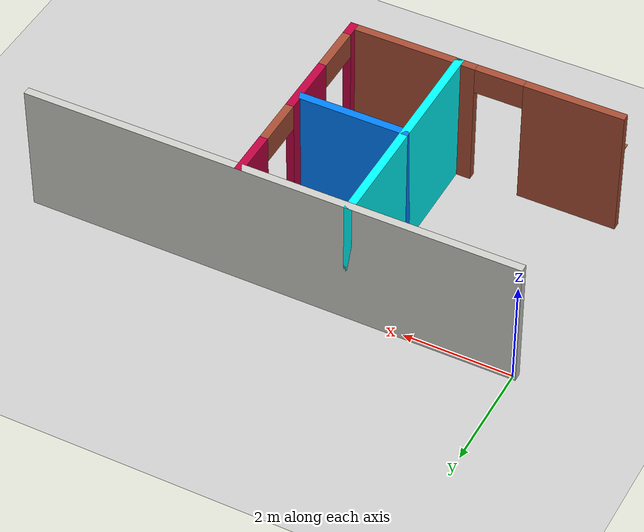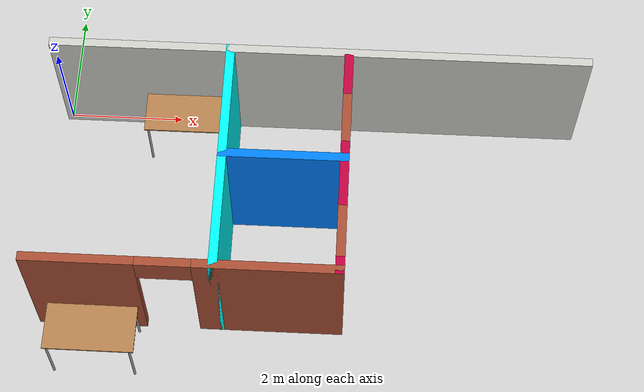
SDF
<sdf version="1.6">
 <world name="default">
  <model name="ground_plane">
   <static>1</static>
   <link name="link">
    <collision name="collision">
     <geometry><plane><normal>0 0 1</normal><size>100 100</size></plane></geometry>
     <surface>
      <contact><collide_bitmask>65535</collide_bitmask></contact>
      <friction><ode><mu>100</mu><mu2>50</mu2></ode></friction>
     </surface>
    </collision>
    <visual name="visual">
     <cast_shadows>0</cast_shadows>
     <geometry><plane><normal>0 0 1</normal><size>100 100</size></plane></geometry>
     <material>
      <script><uri>file://media/materials/scripts/gazebo.material</uri><name>Gazebo/Grey</name></script>
     </material>
    </visual>
   </link>
  </model>
  <model name="table">
   <static>1</static>
   <link name="link">
    <collision name="surface">
     <pose>0 0 1 0 -0 0</pose>
     <geometry><box><size>1.5 0.8 0.03</size></box></geometry>
     <surface><friction><ode><mu>0.6</mu><mu2>0.6</mu2></ode></friction></surface>
    </collision>
    <visual name="visual1">
     <pose>0 0 1 0 -0 0</pose>
     <geometry><box><size>1.5 0.8 0.03</size></box></geometry>
     <material>
      <script><uri>file://media/materials/scripts/gazebo.material</uri><name>Gazebo/Wood</name></script>
     </material>
    </visual>
    <collision name="front_left_leg">
     <pose>0.68 0.38 0.5 0 -0 0</pose>
     <geometry><cylinder><radius>0.02</radius><length>1</length></cylinder></geometry>
    </collision>
    <visual name="front_left_leg">
     <pose>0.68 0.38 0.5 0 -0 0</pose>
     <geometry><cylinder><radius>0.02</radius><length>1</length></cylinder></geometry>
     <material>
      <script><uri>file://media/materials/scripts/gazebo.material</uri><name>Gazebo/Grey</name></script>
     </material>
    </visual>
    <collision name="front_right_leg">
     <pose>0.68 -0.38 0.5 0 -0 0</pose>
     <geometry><cylinder><radius>0.02</radius><length>1</length></cylinder></geometry>
    </collision>
    <visual name="front_right_leg">
     <pose>0.68 -0.38 0.5 0 -0 0</pose>
     <geometry><cylinder><radius>0.02</radius><length>1</length></cylinder></geometry>
     <material>
      <script><uri>file://media/materials/scripts/gazebo.material</uri><name>Gazebo/Grey</name></script>
     </material>
    </visual>
    <collision name="back_right_leg">
     <pose>-0.68 -0.38 0.5 0 -0 0</pose>
     <geometry><cylinder><radius>0.02</radius><length>1</length></cylinder></geometry>
    </collision>
    <visual name="back_right_leg">
     <pose>-0.68 -0.38 0.5 0 -0 0</pose>
     <geometry><cylinder><radius>0.02</radius><length>1</length></cylinder></geometry>
     <material>
      <script><uri>file://media/materials/scripts/gazebo.material</uri><name>Gazebo/Grey</name></script>
     </material>
    </visual>
    <collision name="back_left_leg">
     <pose>-0.68 0.38 0.5 0 -0 0</pose>
     <geometry><cylinder><radius>0.02</radius><length>1</length></cylinder></geometry>
    </collision>
    <visual name="back_left_leg">
     <pose>-0.68 0.38 0.5 0 -0 0</pose>
     <geometry><cylinder><radius>0.02</radius><length>1</length></cylinder></geometry>
     <material>
      <script><uri>file://media/materials/scripts/gazebo.material</uri><name>Gazebo/Grey</name></script>
     </material>
    </visual>
   </link>
   <pose>2.22125 -0.403374 0 0 -0 0</pose>
  </model>
  <model name="cabinet_1">
   <static>1</static>
   <link name="cabinet_bottom_plate">
    <inertial>
     <pose>0 0 -1 0 -0 0</pose>
     <inertia><ixx>2.05</ixx><ixy>0</ixy><ixz>0</ixz><iyy>2.05</iyy><iyz>0</iyz><izz>2.05</izz></inertia>
     <mass>25</mass>
    </inertial>
    <collision name="cabinet_bottom_plate_geom">
     <pose>0 0 0.01 0 -0 0</pose>
     <geometry><box><size>0.45 0.45 0.02</size></box></geometry>
    </collision>
    <visual name="cabinet_bottom_plate_geom_visual">
     <pose>0 0 0.01 0 -0 0</pose>
     <geometry><box><size>0.45 0.45 0.02</size></box></geometry>
     <material>
      <script><uri>file://media/materials/scripts/gazebo.material</uri><name>Gazebo/Wood</name></script>
     </material>
    </visual>
    <collision name="cabinet_bottom_plate_geom_cabinet_back_plate">
     <pose>0.235 0 0.51 0 -0 0</pose>
     <geometry><box><size>0.02 0.45 1.02</size></box></geometry>
    </collision>
    <visual name="cabinet_bottom_plate_geom_cabinet_back_plate_visual">
     <pose>0.235 0 0.51 0 -0 0</pose>
     <geometry><box><size>0.02 0.45 1.02</size></box></geometry>
     <material>
      <script><uri>file://media/materials/scripts/gazebo.material</uri><name>Gazebo/Wood</name></script>
     </material>
    </visual>
    <collision name="cabinet_bottom_plate_geom_cabinet_left_plate">
     <pose>0 0.235 0.51 0 -0 0</pose>
     <geometry><box><size>0.45 0.02 1.02</size></box></geometry>
    </collision>
    <visual name="cabinet_bottom_plate_geom_cabinet_left_plate_visual">
     <pose>0 0.235 0.51 0 -0 0</pose>
     <geometry><box><size>0.45 0.02 1.02</size></box></geometry>
     <material>
      <script><uri>file://media/materials/scripts/gazebo.material</uri><name>Gazebo/Wood</name></script>
     </material>
    </visual>
    <collision name="cabinet_bottom_plate_geom_cabinet_middle_plate">
     <pose>0 0 0.51 0 -0 0</pose>
     <geometry><box><size>0.45 0.45 0.02</size></box></geometry>
    </collision>
    <visual name="cabinet_bottom_plate_geom_cabinet_middle_plate_visual">
     <pose>0 0 0.51 0 -0 0</pose>
     <geometry><box><size>0.45 0.45 0.02</size></box></geometry>
     <material>
      <script><uri>file://media/materials/scripts/gazebo.material</uri><name>Gazebo/Wood</name></script>
     </material>
    </visual>
    <collision name="cabinet_bottom_plate_geom_cabinet_right_plate">
     <pose>0 -0.235 0.51 0 -0 0</pose>
     <geometry><box><size>0.45 0.02 1.02</size></box></geometry>
    </collision>
    <visual name="cabinet_bottom_plate_geom_cabinet_right_plate_visual">
     <pose>0 -0.235 0.51 0 -0 0</pose>
     <geometry><box><size>0.45 0.02 1.02</size></box></geometry>
     <material>
      <script><uri>file://media/materials/scripts/gazebo.material</uri><name>Gazebo/Wood</name></script>
     </material>
    </visual>
    <collision name="cabinet_bottom_plate_geom_cabinet_top_plate">
     <pose>0 0 1.01 0 -0 0</pose>
     <geometry><box><size>0.45 0.45 0.02</size></box></geometry>
    </collision>
    <visual name="cabinet_bottom_plate_geom_cabinet_top_plate_visual">
     <pose>0 0 1.01 0 -0 0</pose>
     <geometry><box><size>0.45 0.45 0.02</size></box></geometry>
     <material>
      <script><uri>file://media/materials/scripts/gazebo.material</uri><name>Gazebo/Wood</name></script>
     </material>
    </visual>
   </link>
   <pose>3.43309 -3.51669 0 0 -0 0</pose>
  </model>
  <model name="table_1">
   <static>1</static>
   <link name="link">
    <collision name="surface">
     <pose>0 0 1 0 -0 0</pose>
     <geometry><box><size>1.5 0.8 0.03</size></box></geometry>
     <surface><friction><ode><mu>0.6</mu><mu2>0.6</mu2></ode></friction></surface>
    </collision>
    <visual name="visual1">
     <pose>0 0 1 0 -0 0</pose>
     <geometry><box><size>1.5 0.8 0.03</size></box></geometry>
     <material>
      <script><uri>file://media/materials/scripts/gazebo.material</uri><name>Gazebo/Wood</name></script>
     </material>
    </visual>
    <collision name="front_left_leg">
     <pose>0.68 0.38 0.5 0 -0 0</pose>
     <geometry><cylinder><radius>0.02</radius><length>1</length></cylinder></geometry>
    </collision>
    <visual name="front_left_leg">
     <pose>0.68 0.38 0.5 0 -0 0</pose>
     <geometry><cylinder><radius>0.02</radius><length>1</length></cylinder></geometry>
     <material>
      <script><uri>file://media/materials/scripts/gazebo.material</uri><name>Gazebo/Grey</name></script>
     </material>
    </visual>
    <collision name="front_right_leg">
     <pose>0.68 -0.38 0.5 0 -0 0</pose>
     <geometry><cylinder><radius>0.02</radius><length>1</length></cylinder></geometry>
    </collision>
    <visual name="front_right_leg">
     <pose>0.68 -0.38 0.5 0 -0 0</pose>
     <geometry><cylinder><radius>0.02</radius><length>1</length></cylinder></geometry>
     <material>
      <script><uri>file://media/materials/scripts/gazebo.material</uri><name>Gazebo/Grey</name></script>
     </material>
    </visual>
    <collision name="back_right_leg">
     <pose>-0.68 -0.38 0.5 0 -0 0</pose>
     <geometry><cylinder><radius>0.02</radius><length>1</length></cylinder></geometry>
    </collision>
    <visual name="back_right_leg">
     <pose>-0.68 -0.38 0.5 0 -0 0</pose>
     <geometry><cylinder><radius>0.02</radius><length>1</length></cylinder></geometry>
     <material>
      <script><uri>file://media/materials/scripts/gazebo.material</uri><name>Gazebo/Grey</name></script>
     </material>
    </visual>
    <collision name="back_left_leg">
     <pose>-0.68 0.38 0.5 0 -0 0</pose>
     <geometry><cylinder><radius>0.02</radius><length>1</length></cylinder></geometry>
    </collision>
    <visual name="back_left_leg">
     <pose>-0.68 0.38 0.5 0 -0 0</pose>
     <geometry><cylinder><radius>0.02</radius><length>1</length></cylinder></geometry>
     <material>
      <script><uri>file://media/materials/scripts/gazebo.material</uri><name>Gazebo/Grey</name></script>
     </material>
    </visual>
   </link>
   <pose>0.951976 -4.55187 0 0 0 -0.003535</pose>
  </model>
  <model name="my_building">
   <link name="Wall_0">
    <pose>0 6 0 0 -0 0</pose>
    <visual name="Wall_0_Visual">
     <pose>0 0 1.25 0 -0 0</pose>
     <geometry><box><size>9.15 0.15 2.5</size></box></geometry>
     <material>
      <script><uri>file://media/materials/scripts/gazebo.material</uri><name>Gazebo/CeilingTiled</name></script>
      <ambient>0.760784 0.662745 0.627451 1</ambient>
      <shader type="pixel"/>
      <diffuse>1 1 1 1</diffuse>
      <specular>0 0 0 1</specular>
      <emissive>0 0 0 1</emissive>
     </material>
     <meta><layer>0</layer></meta>
    </visual>
    <collision name="Wall_0_Collision">
     <pose>0 0 1.25 0 -0 0</pose>
     <geometry><box><size>9.15 0.15 2.5</size></box></geometry>
     <surface>
      <friction>
       <ode><mu>1</mu><mu2>1</mu2><fdir1>0 0 0</fdir1><slip1>0</slip1><slip2>0</slip2></ode>
       <torsional>
        <coefficient>1</coefficient>
        <patch_radius>0</patch_radius>
        <surface_radius>0</surface_radius>
        <use_patch_radius>1</use_patch_radius>
        <ode><slip>0</slip></ode>
       </torsional>
      </friction>
      <bounce><restitution_coefficient>0</restitution_coefficient><threshold>1e+06</threshold></bounce>
      <contact>
       <collide_without_contact>0</collide_without_contact>
       <collide_without_contact_bitmask>1</collide_without_contact_bitmask>
       <collide_bitmask>1</collide_bitmask>
       <ode>
        <soft_cfm>0</soft_cfm>
        <soft_erp>0.2</soft_erp>
        <kp>1e+13</kp>
        <kd>1</kd>
        <max_vel>0.01</max_vel>
        <min_depth>0</min_depth>
       </ode>
       <bullet>
        <split_impulse>1</split_impulse>
        <split_impulse_penetration_threshold>-0.01</split_impulse_penetration_threshold>
        <soft_cfm>0</soft_cfm>
        <soft_erp>0.2</soft_erp>
        <kp>1e+13</kp>
        <kd>1</kd>
       </bullet>
      </contact>
     </surface>
    </collision>
   </link>
   <link name="Wall_11">
    <pose>-1.5 4 0 0 0 -1.5708</pose>
    <inertial>
     <mass>1</mass>
     <inertia><ixx>1</ixx><ixy>0</ixy><ixz>0</ixz><iyy>1</iyy><iyz>0</iyz><izz>1</izz></inertia>
    </inertial>
    <visual name="Wall_11_Visual">
     <pose>0 0 1.25 0 -0 0</pose>
     <geometry><box><size>4.15 0.15 2.5</size></box></geometry>
     <material>
      <script><uri>file://media/materials/scripts/gazebo.material</uri><name>Gazebo/Grey</name></script>
      <ambient>0 1 1 1</ambient>
      <shader type="pixel"><normal_map>__default__</normal_map></shader>
      <diffuse>0.7 0.7 0.7 1</diffuse>
      <specular>0.01 0.01 0.01 1</specular>
      <emissive>0 0 0 1</emissive>
     </material>
     <meta><layer>0</layer></meta>
    </visual>
    <collision name="Wall_11_Collision">
     <pose>0 0 1.25 0 -0 0</pose>
     <geometry><box><size>4.15 0.15 2.5</size></box></geometry>
     <surface>
      <friction>
       <ode><mu>1</mu><mu2>1</mu2><fdir1>0 0 0</fdir1><slip1>0</slip1><slip2>0</slip2></ode>
       <torsional>
        <coefficient>1</coefficient>
        <patch_radius>0</patch_radius>
        <surface_radius>0</surface_radius>
        <use_patch_radius>1</use_patch_radius>
        <ode><slip>0</slip></ode>
       </torsional>
      </friction>
      <bounce><restitution_coefficient>0</restitution_coefficient><threshold>1e+06</threshold></bounce>
      <contact>
       <collide_without_contact>0</collide_without_contact>
       <collide_without_contact_bitmask>1</collide_without_contact_bitmask>
       <collide_bitmask>1</collide_bitmask>
       <ode>
        <soft_cfm>0</soft_cfm>
        <soft_erp>0.2</soft_erp>
        <kp>1e+13</kp>
        <kd>1</kd>
        <max_vel>0.01</max_vel>
        <min_depth>0</min_depth>
       </ode>
       <bullet>
        <split_impulse>1</split_impulse>
        <split_impulse_penetration_threshold>-0.01</split_impulse_penetration_threshold>
        <soft_cfm>0</soft_cfm>
        <soft_erp>0.2</soft_erp>
        <kp>1e+13</kp>
        <kd>1</kd>
       </bullet>
      </contact>
     </surface>
    </collision>
   </link>
   <link name="Wall_13">
    <pose>-2 2 0 0 -0 0</pose>
    <inertial>
     <mass>1</mass>
     <inertia><ixx>1</ixx><ixy>0</ixy><ixz>0</ixz><iyy>1</iyy><iyz>0</iyz><izz>1</izz></inertia>
    </inertial>
    <visual name="Wall_13_Visual_2">
     <pose>-0.287034 0 2.25 0 -0 0</pose>
     <geometry><box><size>0.9 0.15 0.5</size></box></geometry>
     <material>
      <script><uri>file://media/materials/scripts/gazebo.material</uri><name>Gazebo/Bricks</name></script>
      <ambient>1 1 1 1</ambient>
      <shader type="pixel"><normal_map>__default__</normal_map></shader>
      <diffuse>0.7 0.7 0.7 1</diffuse>
      <specular>0.01 0.01 0.01 1</specular>
      <emissive>0 0 0 1</emissive>
     </material>
     <meta><layer>0</layer></meta>
    </visual>
    <visual name="Wall_13_Visual_0">
     <pose>-1.65602 0 1.25 0 -0 0</pose>
     <geometry><box><size>1.83797 0.15 2.5</size></box></geometry>
     <material>
      <script><uri>file://media/materials/scripts/gazebo.material</uri><name>Gazebo/Bricks</name></script>
      <ambient>1 1 1 1</ambient>
      <shader type="pixel"><normal_map>__default__</normal_map></shader>
      <diffuse>0.7 0.7 0.7 1</diffuse>
      <specular>0.01 0.01 0.01 1</specular>
      <emissive>0 0 0 1</emissive>
     </material>
     <meta><layer>0</layer></meta>
    </visual>
    <visual name="Wall_13_Visual_1">
     <pose>1.36898 0 1.25 0 -0 0</pose>
     <geometry><box><size>2.41203 0.15 2.5</size></box></geometry>
     <material>
      <script><uri>file://media/materials/scripts/gazebo.material</uri><name>Gazebo/Bricks</name></script>
      <ambient>1 1 1 1</ambient>
      <shader type="pixel"><normal_map>__default__</normal_map></shader>
      <diffuse>0.7 0.7 0.7 1</diffuse>
      <specular>0.01 0.01 0.01 1</specular>
      <emissive>0 0 0 1</emissive>
     </material>
     <meta><layer>0</layer></meta>
    </visual>
    <collision name="Wall_13_Collision_1">
     <pose>1.36898 0 1.25 0 -0 0</pose>
     <geometry><box><size>2.41203 0.15 2.5</size></box></geometry>
     <surface>
      <friction>
       <ode><mu>1</mu><mu2>1</mu2><fdir1>0 0 0</fdir1><slip1>0</slip1><slip2>0</slip2></ode>
       <torsional>
        <coefficient>1</coefficient>
        <patch_radius>0</patch_radius>
        <surface_radius>0</surface_radius>
        <use_patch_radius>1</use_patch_radius>
        <ode><slip>0</slip></ode>
       </torsional>
      </friction>
      <bounce><restitution_coefficient>0</restitution_coefficient><threshold>1e+06</threshold></bounce>
      <contact>
       <collide_without_contact>0</collide_without_contact>
       <collide_without_contact_bitmask>1</collide_without_contact_bitmask>
       <collide_bitmask>1</collide_bitmask>
       <ode>
        <soft_cfm>0</soft_cfm>
        <soft_erp>0.2</soft_erp>
        <kp>1e+13</kp>
        <kd>1</kd>
        <max_vel>0.01</max_vel>
        <min_depth>0</min_depth>
       </ode>
       <bullet>
        <split_impulse>1</split_impulse>
        <split_impulse_penetration_threshold>-0.01</split_impulse_penetration_threshold>
        <soft_cfm>0</soft_cfm>
        <soft_erp>0.2</soft_erp>
        <kp>1e+13</kp>
        <kd>1</kd>
       </bullet>
      </contact>
     </surface>
    </collision>
    <collision name="Wall_13_Collision_0">
     <pose>-1.65602 0 1.25 0 -0 0</pose>
     <geometry><box><size>1.83797 0.15 2.5</size></box></geometry>
     <surface>
      <friction>
       <ode><mu>1</mu><mu2>1</mu2><fdir1>0 0 0</fdir1><slip1>0</slip1><slip2>0</slip2></ode>
       <torsional>
        <coefficient>1</coefficient>
        <patch_radius>0</patch_radius>
        <surface_radius>0</surface_radius>
        <use_patch_radius>1</use_patch_radius>
        <ode><slip>0</slip></ode>
       </torsional>
      </friction>
      <bounce><restitution_coefficient>0</restitution_coefficient><threshold>1e+06</threshold></bounce>
      <contact>
       <collide_without_contact>0</collide_without_contact>
       <collide_without_contact_bitmask>1</collide_without_contact_bitmask>
       <collide_bitmask>1</collide_bitmask>
       <ode>
        <soft_cfm>0</soft_cfm>
        <soft_erp>0.2</soft_erp>
        <kp>1e+13</kp>
        <kd>1</kd>
        <max_vel>0.01</max_vel>
        <min_depth>0</min_depth>
       </ode>
       <bullet>
        <split_impulse>1</split_impulse>
        <split_impulse_penetration_threshold>-0.01</split_impulse_penetration_threshold>
        <soft_cfm>0</soft_cfm>
        <soft_erp>0.2</soft_erp>
        <kp>1e+13</kp>
        <kd>1</kd>
       </bullet>
      </contact>
     </surface>
    </collision>
    <collision name="Wall_13_Collision_2">
     <pose>-0.287034 0 2.25 0 -0 0</pose>
     <geometry><box><size>0.9 0.15 0.5</size></box></geometry>
     <surface>
      <friction>
       <ode><mu>1</mu><mu2>1</mu2><fdir1>0 0 0</fdir1><slip1>0</slip1><slip2>0</slip2></ode>
       <torsional>
        <coefficient>1</coefficient>
        <patch_radius>0</patch_radius>
        <surface_radius>0</surface_radius>
        <use_patch_radius>1</use_patch_radius>
        <ode><slip>0</slip></ode>
       </torsional>
      </friction>
      <bounce><restitution_coefficient>0</restitution_coefficient><threshold>1e+06</threshold></bounce>
      <contact>
       <collide_without_contact>0</collide_without_contact>
       <collide_without_contact_bitmask>1</collide_without_contact_bitmask>
       <collide_bitmask>1</collide_bitmask>
       <ode>
        <soft_cfm>0</soft_cfm>
        <soft_erp>0.2</soft_erp>
        <kp>1e+13</kp>
        <kd>1</kd>
        <max_vel>0.01</max_vel>
        <min_depth>0</min_depth>
       </ode>
       <bullet>
        <split_impulse>1</split_impulse>
        <split_impulse_penetration_threshold>-0.01</split_impulse_penetration_threshold>
        <soft_cfm>0</soft_cfm>
        <soft_erp>0.2</soft_erp>
        <kp>1e+13</kp>
        <kd>1</kd>
       </bullet>
      </contact>
     </surface>
    </collision>
   </link>
   <link name="Wall_17">
    <pose>0.5 4 0 0 0 -1.5708</pose>
    <inertial>
     <mass>1</mass>
     <inertia><ixx>1</ixx><ixy>0</ixy><ixz>0</ixz><iyy>1</iyy><iyz>0</iyz><izz>1</izz></inertia>
    </inertial>
    <visual name="Wall_17_Visual_2">
     <pose>1.92248 0 1.25 0 -0 0</pose>
     <geometry><box><size>0.305035 0.15 2.5</size></box></geometry>
     <material>
      <script><uri>file://media/materials/scripts/gazebo.material</uri><name>Gazebo/Grey</name></script>
      <ambient>0.75 0 0.25 1</ambient>
      <shader type="pixel"><normal_map>__default__</normal_map></shader>
      <diffuse>0.7 0.7 0.7 1</diffuse>
      <specular>0.01 0.01 0.01 1</specular>
      <emissive>0 0 0 1</emissive>
     </material>
     <meta><layer>0</layer></meta>
    </visual>
    <visual name="Wall_17_Visual_0">
     <pose>-1.63815 0 1.25 0 -0 0</pose>
     <geometry><box><size>0.873694 0.15 2.5</size></box></geometry>
     <material>
      <script><uri>file://media/materials/scripts/gazebo.material</uri><name>Gazebo/Grey</name></script>
      <ambient>0.75 0 0.25 1</ambient>
      <shader type="pixel"><normal_map>__default__</normal_map></shader>
      <diffuse>0.7 0.7 0.7 1</diffuse>
      <specular>0.01 0.01 0.01 1</specular>
      <emissive>0 0 0 1</emissive>
     </material>
     <meta><layer>0</layer></meta>
    </visual>
    <visual name="Wall_17_Visual_4">
     <pose>1.31997 0 2.25 0 -0 0</pose>
     <geometry><box><size>0.9 0.15 0.5</size></box></geometry>
     <material>
      <script><uri>file://media/materials/scripts/gazebo.material</uri><name>Gazebo/Bricks</name></script>
      <ambient>1 1 1 1</ambient>
      <shader type="pixel"><normal_map>__default__</normal_map></shader>
      <diffuse>0.7 0.7 0.7 1</diffuse>
      <specular>0.01 0.01 0.01 1</specular>
      <emissive>0 0 0 1</emissive>
     </material>
     <meta><layer>0</layer></meta>
    </visual>
    <visual name="Wall_17_Visual_1">
     <pose>0.28433 0 1.25 0 -0 0</pose>
     <geometry><box><size>1.17127 0.15 2.5</size></box></geometry>
     <material>
      <script><uri>file://media/materials/scripts/gazebo.material</uri><name>Gazebo/Grey</name></script>
      <ambient>0.75 0 0.25 1</ambient>
      <shader type="pixel"><normal_map>__default__</normal_map></shader>
      <diffuse>0.7 0.7 0.7 1</diffuse>
      <specular>0.01 0.01 0.01 1</specular>
      <emissive>0 0 0 1</emissive>
     </material>
     <meta><layer>0</layer></meta>
    </visual>
    <visual name="Wall_17_Visual_3">
     <pose>-0.751306 0 2.25 0 -0 0</pose>
     <geometry><box><size>0.9 0.15 0.5</size></box></geometry>
     <material>
      <script><uri>file://media/materials/scripts/gazebo.material</uri><name>Gazebo/Bricks</name></script>
      <ambient>1 1 1 1</ambient>
      <shader type="pixel"><normal_map>__default__</normal_map></shader>
      <diffuse>0.7 0.7 0.7 1</diffuse>
      <specular>0.01 0.01 0.01 1</specular>
      <emissive>0 0 0 1</emissive>
     </material>
     <meta><layer>0</layer></meta>
    </visual>
    <collision name="Wall_17_Collision_0">
     <pose>-1.63815 0 1.25 0 -0 0</pose>
     <geometry><box><size>0.873694 0.15 2.5</size></box></geometry>
     <surface>
      <friction>
       <ode><mu>1</mu><mu2>1</mu2><fdir1>0 0 0</fdir1><slip1>0</slip1><slip2>0</slip2></ode>
       <torsional>
        <coefficient>1</coefficient>
        <patch_radius>0</patch_radius>
        <surface_radius>0</surface_radius>
        <use_patch_radius>1</use_patch_radius>
        <ode><slip>0</slip></ode>
       </torsional>
      </friction>
      <bounce><restitution_coefficient>0</restitution_coefficient><threshold>1e+06</threshold></bounce>
      <contact>
       <collide_without_contact>0</collide_without_contact>
       <collide_without_contact_bitmask>1</collide_without_contact_bitmask>
       <collide_bitmask>1</collide_bitmask>
       <ode>
        <soft_cfm>0</soft_cfm>
        <soft_erp>0.2</soft_erp>
        <kp>1e+13</kp>
        <kd>1</kd>
        <max_vel>0.01</max_vel>
        <min_depth>0</min_depth>
       </ode>
       <bullet>
        <split_impulse>1</split_impulse>
        <split_impulse_penetration_threshold>-0.01</split_impulse_penetration_threshold>
        <soft_cfm>0</soft_cfm>
        <soft_erp>0.2</soft_erp>
        <kp>1e+13</kp>
        <kd>1</kd>
       </bullet>
      </contact>
     </surface>
    </collision>
    <collision name="Wall_17_Collision_3">
     <pose>-0.751306 0 2.25 0 -0 0</pose>
     <geometry><box><size>0.9 0.15 0.5</size></box></geometry>
     <surface>
      <friction>
       <ode><mu>1</mu><mu2>1</mu2><fdir1>0 0 0</fdir1><slip1>0</slip1><slip2>0</slip2></ode>
       <torsional>
        <coefficient>1</coefficient>
        <patch_radius>0</patch_radius>
        <surface_radius>0</surface_radius>
        <use_patch_radius>1</use_patch_radius>
        <ode><slip>0</slip></ode>
       </torsional>
      </friction>
      <bounce><restitution_coefficient>0</restitution_coefficient><threshold>1e+06</threshold></bounce>
      <contact>
       <collide_without_contact>0</collide_without_contact>
       <collide_without_contact_bitmask>1</collide_without_contact_bitmask>
       <collide_bitmask>1</collide_bitmask>
       <ode>
        <soft_cfm>0</soft_cfm>
        <soft_erp>0.2</soft_erp>
        <kp>1e+13</kp>
        <kd>1</kd>
        <max_vel>0.01</max_vel>
        <min_depth>0</min_depth>
       </ode>
       <bullet>
        <split_impulse>1</split_impulse>
        <split_impulse_penetration_threshold>-0.01</split_impulse_penetration_threshold>
        <soft_cfm>0</soft_cfm>
        <soft_erp>0.2</soft_erp>
        <kp>1e+13</kp>
        <kd>1</kd>
       </bullet>
      </contact>
     </surface>
    </collision>
    <collision name="Wall_17_Collision_1">
     <pose>0.28433 0 1.25 0 -0 0</pose>
     <geometry><box><size>1.17127 0.15 2.5</size></box></geometry>
     <surface>
      <friction>
       <ode><mu>1</mu><mu2>1</mu2><fdir1>0 0 0</fdir1><slip1>0</slip1><slip2>0</slip2></ode>
       <torsional>
        <coefficient>1</coefficient>
        <patch_radius>0</patch_radius>
        <surface_radius>0</surface_radius>
        <use_patch_radius>1</use_patch_radius>
        <ode><slip>0</slip></ode>
       </torsional>
      </friction>
      <bounce><restitution_coefficient>0</restitution_coefficient><threshold>1e+06</threshold></bounce>
      <contact>
       <collide_without_contact>0</collide_without_contact>
       <collide_without_contact_bitmask>1</collide_without_contact_bitmask>
       <collide_bitmask>1</collide_bitmask>
       <ode>
        <soft_cfm>0</soft_cfm>
        <soft_erp>0.2</soft_erp>
        <kp>1e+13</kp>
        <kd>1</kd>
        <max_vel>0.01</max_vel>
        <min_depth>0</min_depth>
       </ode>
       <bullet>
        <split_impulse>1</split_impulse>
        <split_impulse_penetration_threshold>-0.01</split_impulse_penetration_threshold>
        <soft_cfm>0</soft_cfm>
        <soft_erp>0.2</soft_erp>
        <kp>1e+13</kp>
        <kd>1</kd>
       </bullet>
      </contact>
     </surface>
    </collision>
    <collision name="Wall_17_Collision_2">
     <pose>1.92248 0 1.25 0 -0 0</pose>
     <geometry><box><size>0.305035 0.15 2.5</size></box></geometry>
     <surface>
      <friction>
       <ode><mu>1</mu><mu2>1</mu2><fdir1>0 0 0</fdir1><slip1>0</slip1><slip2>0</slip2></ode>
       <torsional>
        <coefficient>1</coefficient>
        <patch_radius>0</patch_radius>
        <surface_radius>0</surface_radius>
        <use_patch_radius>1</use_patch_radius>
        <ode><slip>0</slip></ode>
       </torsional>
      </friction>
      <bounce><restitution_coefficient>0</restitution_coefficient><threshold>1e+06</threshold></bounce>
      <contact>
       <collide_without_contact>0</collide_without_contact>
       <collide_without_contact_bitmask>1</collide_without_contact_bitmask>
       <collide_bitmask>1</collide_bitmask>
       <ode>
        <soft_cfm>0</soft_cfm>
        <soft_erp>0.2</soft_erp>
        <kp>1e+13</kp>
        <kd>1</kd>
        <max_vel>0.01</max_vel>
        <min_depth>0</min_depth>
       </ode>
       <bullet>
        <split_impulse>1</split_impulse>
        <split_impulse_penetration_threshold>-0.01</split_impulse_penetration_threshold>
        <soft_cfm>0</soft_cfm>
        <soft_erp>0.2</soft_erp>
        <kp>1e+13</kp>
        <kd>1</kd>
       </bullet>
      </contact>
     </surface>
    </collision>
    <collision name="Wall_17_Collision_4">
     <pose>1.31997 0 2.25 0 -0 0</pose>
     <geometry><box><size>0.9 0.15 0.5</size></box></geometry>
     <surface>
      <friction>
       <ode><mu>1</mu><mu2>1</mu2><fdir1>0 0 0</fdir1><slip1>0</slip1><slip2>0</slip2></ode>
       <torsional>
        <coefficient>1</coefficient>
        <patch_radius>0</patch_radius>
        <surface_radius>0</surface_radius>
        <use_patch_radius>1</use_patch_radius>
        <ode><slip>0</slip></ode>
       </torsional>
      </friction>
      <bounce><restitution_coefficient>0</restitution_coefficient><threshold>1e+06</threshold></bounce>
      <contact>
       <collide_without_contact>0</collide_without_contact>
       <collide_without_contact_bitmask>1</collide_without_contact_bitmask>
       <collide_bitmask>1</collide_bitmask>
       <ode>
        <soft_cfm>0</soft_cfm>
        <soft_erp>0.2</soft_erp>
        <kp>1e+13</kp>
        <kd>1</kd>
        <max_vel>0.01</max_vel>
        <min_depth>0</min_depth>
       </ode>
       <bullet>
        <split_impulse>1</split_impulse>
        <split_impulse_penetration_threshold>-0.01</split_impulse_penetration_threshold>
        <soft_cfm>0</soft_cfm>
        <soft_erp>0.2</soft_erp>
        <kp>1e+13</kp>
        <kd>1</kd>
       </bullet>
      </contact>
     </surface>
    </collision>
   </link>
   <link name="Wall_23">
    <pose>-0.5 4 0 0 -0 0</pose>
    <inertial>
     <mass>1</mass>
     <inertia><ixx>1</ixx><ixy>0</ixy><ixz>0</ixz><iyy>1</iyy><iyz>0</iyz><izz>1</izz></inertia>
    </inertial>
    <visual name="Wall_23_Visual">
     <pose>0 0 1.25 0 -0 0</pose>
     <geometry><box><size>2.15 0.15 2.5</size></box></geometry>
     <material>
      <script><uri>file://media/materials/scripts/gazebo.material</uri><name>Gazebo/Grey</name></script>
      <ambient>0 0.5 1 1</ambient>
      <shader type="pixel"><normal_map>__default__</normal_map></shader>
      <diffuse>0.7 0.7 0.7 1</diffuse>
      <specular>0.01 0.01 0.01 1</specular>
      <emissive>0 0 0 1</emissive>
     </material>
     <meta><layer>0</layer></meta>
    </visual>
    <collision name="Wall_23_Collision">
     <pose>0 0 1.25 0 -0 0</pose>
     <geometry><box><size>2.15 0.15 2.5</size></box></geometry>
     <surface>
      <friction>
       <ode><mu>1</mu><mu2>1</mu2><fdir1>0 0 0</fdir1><slip1>0</slip1><slip2>0</slip2></ode>
       <torsional>
        <coefficient>1</coefficient>
        <patch_radius>0</patch_radius>
        <surface_radius>0</surface_radius>
        <use_patch_radius>1</use_patch_radius>
        <ode><slip>0</slip></ode>
       </torsional>
      </friction>
      <bounce><restitution_coefficient>0</restitution_coefficient><threshold>1e+06</threshold></bounce>
      <contact>
       <collide_without_contact>0</collide_without_contact>
       <collide_without_contact_bitmask>1</collide_without_contact_bitmask>
       <collide_bitmask>1</collide_bitmask>
       <ode>
        <soft_cfm>0</soft_cfm>
        <soft_erp>0.2</soft_erp>
        <kp>1e+13</kp>
        <kd>1</kd>
        <max_vel>0.01</max_vel>
        <min_depth>0</min_depth>
       </ode>
       <bullet>
        <split_impulse>1</split_impulse>
        <split_impulse_penetration_threshold>-0.01</split_impulse_penetration_threshold>
        <soft_cfm>0</soft_cfm>
        <soft_erp>0.2</soft_erp>
        <kp>1e+13</kp>
        <kd>1</kd>
       </bullet>
      </contact>
     </surface>
    </collision>
   </link>
   <static>1</static>
   <pose>4.5 -6 0 0 -0 0</pose>
  </model>
 </world>
</sdf>
